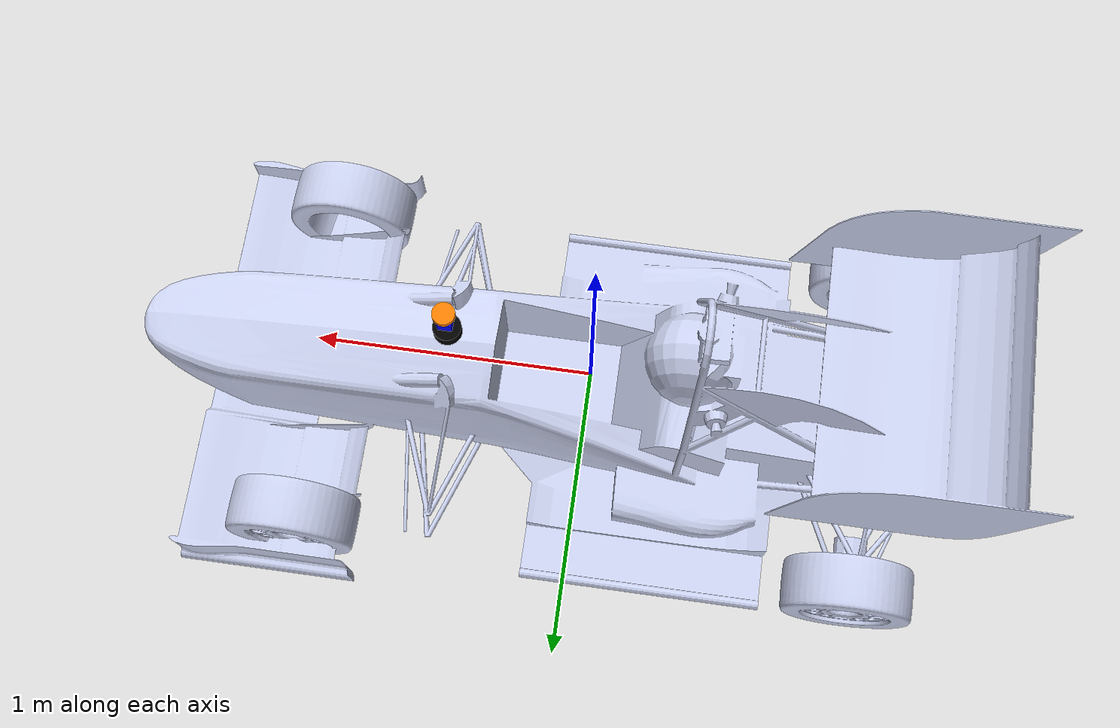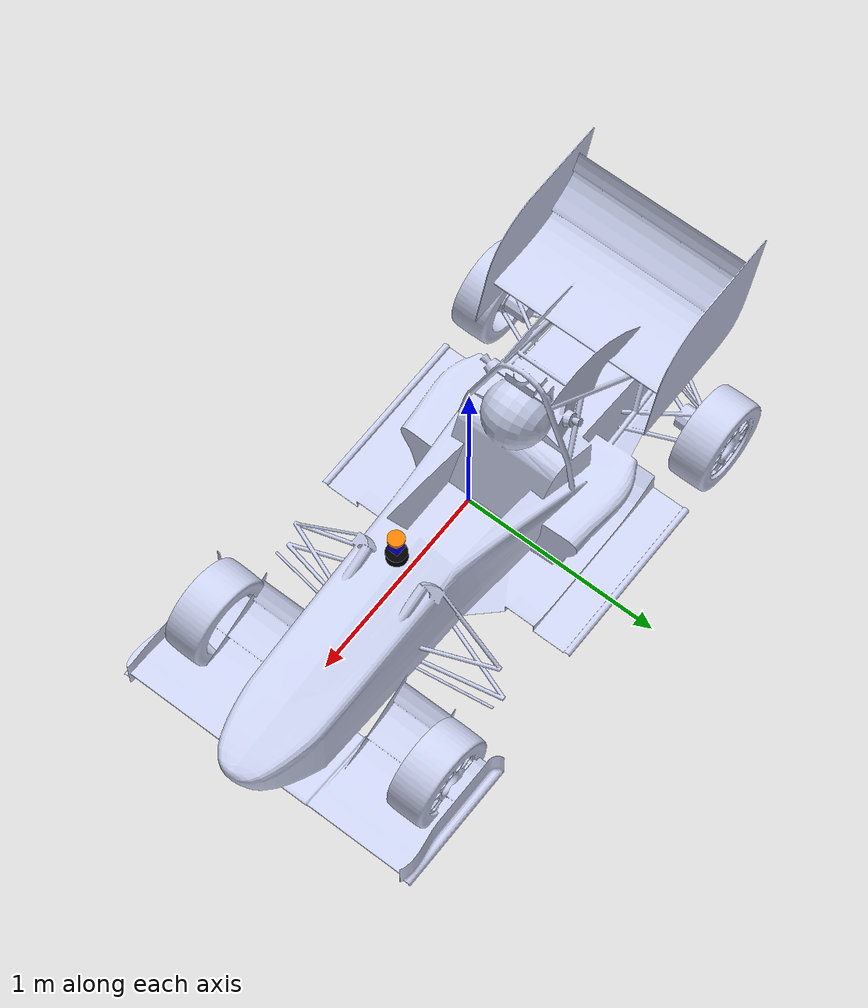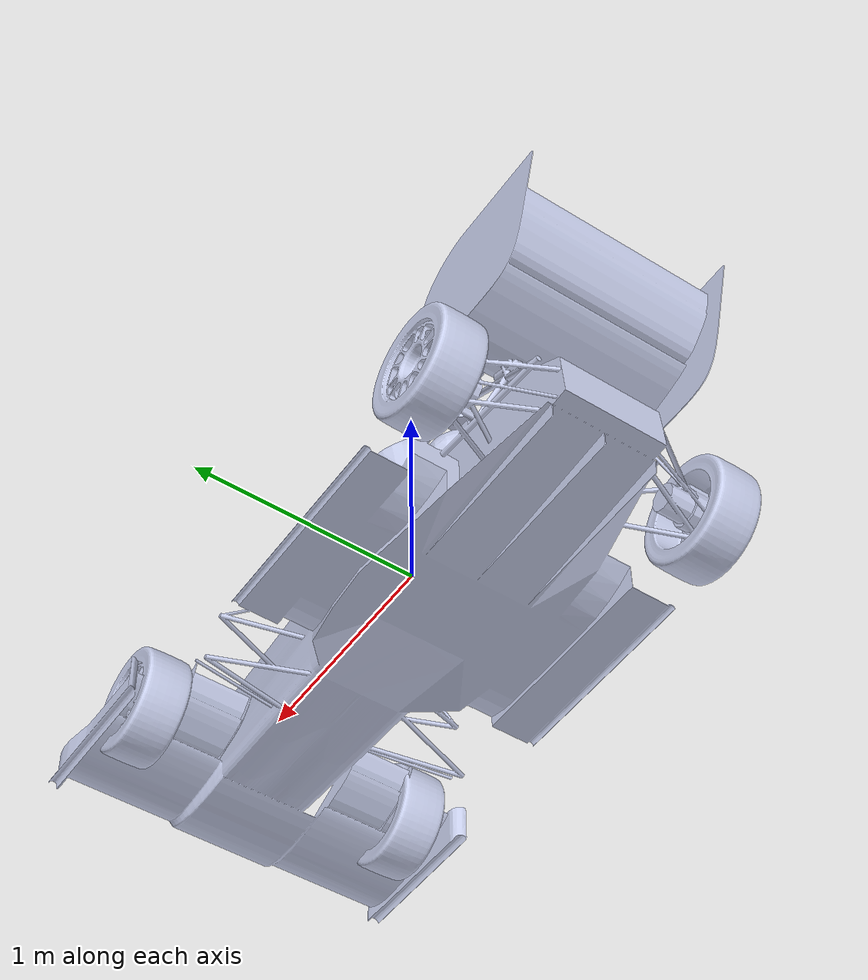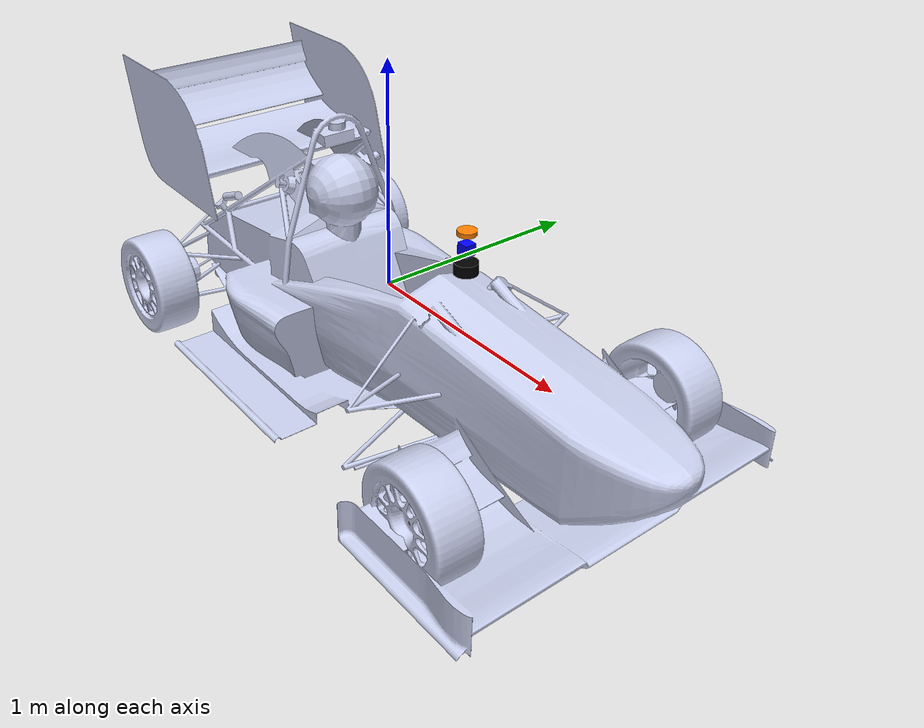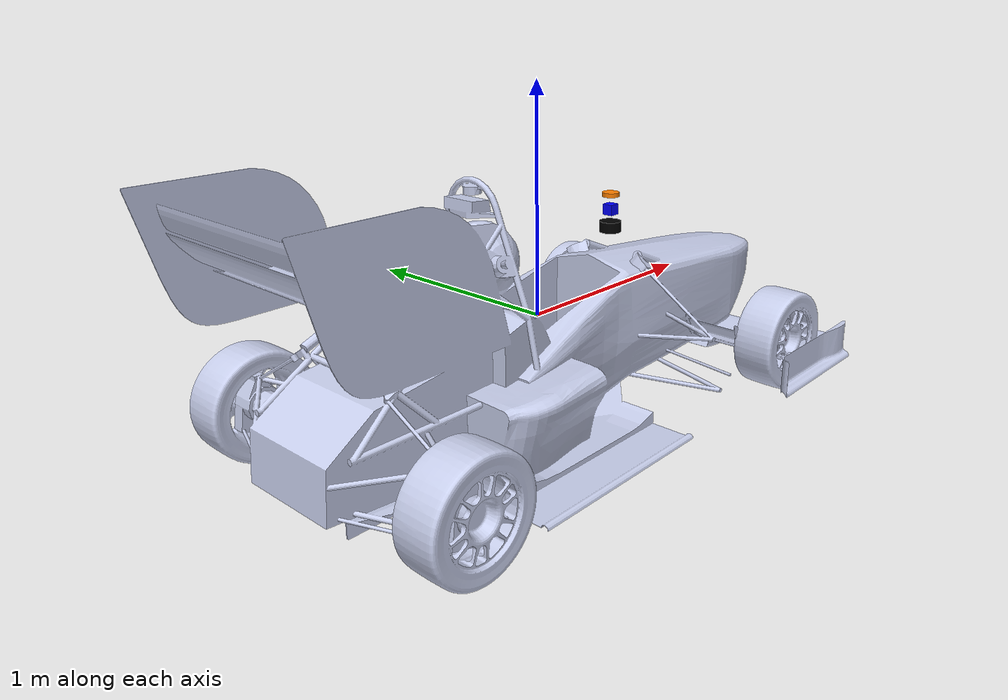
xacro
<?xml version="1.0"?>
<robot name="bgr" xmlns:xacro="http://ros.org/wiki/xacro">

  <!-- === Basic params === -->

  <!-- Wheel geometry (radius/width) and chassis dimensions -->
  <xacro:property name="wheel_radius" value="0.24"/>
  <xacro:property name="wheel_width"  value="0.12"/>

  <!-- Track = left-right distance between wheel centers; Wheelbase = front-rear distance -->
  <xacro:property name="track"        value="1.3092"/>
  <xacro:property name="wheelbase"    value="2.0368"/>

  <!-- Mass and steering limits -->
  <!-- Real measured total car mass is 283.6 kg. body_mass is the remaining
       base_link mass after separately modeled wheels, steering stubs, and sensors. -->
  <xacro:property name="total_vehicle_mass" value="283.6"/>
  <xacro:property name="wheel_mass"         value="5.0"/>
  <xacro:property name="steering_stub_mass" value="0.01"/>
  <xacro:property name="lidar_mass"         value="0.5"/>
  <xacro:property name="imu_mass"           value="0.1"/>
  <xacro:property name="front_cam_mass"     value="0.01"/>
  <xacro:property name="gps_mass"           value="0.1"/>
  <xacro:property name="body_mass"          value="${total_vehicle_mass - (4*wheel_mass + 2*steering_stub_mass + lidar_mass + imu_mass + front_cam_mass + gps_mass)}"/>
  <xacro:property name="wheel_normal_force" value="${total_vehicle_mass * 9.80665 / 4.0}"/>
  <xacro:property name="steer_limit"  value="0.6"/>

  <!-- Sensor update rates (Hz) -->
  <xacro:arg name="lidar_update_rate"     default="50"/>
  <xacro:arg name="front_cam_update_rate" default="30"/>

  <xacro:property name="lidar_update_rate"     value="$(arg lidar_update_rate)"/>
  <xacro:property name="imu_update_rate"       value="10"/>
  <xacro:property name="front_cam_update_rate" value="$(arg front_cam_update_rate)"/>
  <xacro:property name="gps_update_rate"       value="10"/>

  <!-- Mesh-bounds approximation used for base_link collision and inertia.
       Replace body_cg_* with measured CG values when available. -->
  <xacro:property name="body_size_x"             value="3.140043"/>
  <xacro:property name="body_size_y"             value="1.606011"/>
  <xacro:property name="body_size_z"             value="1.151132"/>
  <xacro:property name="body_collision_origin_x" value="0.074010"/>
  <xacro:property name="body_collision_origin_y" value="0.0"/>
  <xacro:property name="body_collision_origin_z" value="0.153035"/>
  <xacro:property name="body_cg_x"               value="${body_collision_origin_x}"/>
  <xacro:property name="body_cg_y"               value="${body_collision_origin_y}"/>
  <xacro:property name="body_cg_z"               value="${body_collision_origin_z}"/>

  <!-- External includes. Keep these after shared properties so Gazebo and
       ros2_control fragments can reuse the same physical dimensions. -->
  <xacro:include filename="$(find bgr_description)/urdf/bgr_gazebo.xacro"/>
  <xacro:include filename="$(find bgr_description)/urdf/bgr_ros2_control.xacro"/>

  <!-- === Base footprint === -->
  <link name="base_footprint"/>

  <joint name="base_joint" type="fixed">
    <parent link="base_footprint"/>
    <child link="base_link"/>
    <origin xyz="0 0 0" rpy="0 0 0"/>
  </joint>

   <!--  Base link (chassis) -->
  <link name="base_link">
    <!-- Box inertia -->
    <inertial>
      <origin xyz="${body_cg_x} ${body_cg_y} ${body_cg_z}" rpy="0 0 0"/>
      <mass value="${body_mass}"/>
      <inertia ixx="${1.0/12.0*body_mass*(body_size_y*body_size_y + body_size_z*body_size_z)}"
               iyy="${1.0/12.0*body_mass*(body_size_x*body_size_x + body_size_z*body_size_z)}"
               izz="${1.0/12.0*body_mass*(body_size_x*body_size_x + body_size_y*body_size_y)}"
               ixy="0" ixz="0" iyz="0"/>
    </inertial>

    <!-- Visual STL File (doesn't affect physics) -->
    <visual>
      <origin xyz="0 0 0" rpy="0 0 0"/>
      <geometry>
        <mesh filename="package://bgr_description/meshes/visual/base_link.STL"/>
      </geometry>
      <material name=""><color rgba="0.79216 0.81961 0.93333 1"/></material>
    </visual>

    <!-- Collision as box (affects physics) -->
    <collision>
      <origin xyz="${body_collision_origin_x} ${body_collision_origin_y} ${body_collision_origin_z}" rpy="0 0 0"/>
      <geometry>
        <box size="${body_size_x} ${body_size_y} ${body_size_z}"/>
      </geometry>
    </collision>
  </link>

  <!-- === Wheel link macro === -->
  <xacro:macro name="wheel_link" params="name visual_mesh">
    <link name="${name}">
      <inertial>
        <origin xyz="0 0 0" rpy="0 0 0"/>
        <mass value="${wheel_mass}"/>
        <inertia ixx="${(1.0/12.0)*wheel_mass*(3*wheel_radius*wheel_radius + wheel_width*wheel_width)}"
                 iyy="${0.5*wheel_mass*wheel_radius*wheel_radius}"
                 izz="${(1.0/12.0)*wheel_mass*(3*wheel_radius*wheel_radius + wheel_width*wheel_width)}"
                 ixy="0" ixz="0" iyz="0"/>
      </inertial>

      <!-- Visual mesh -->
      <visual>
        <origin xyz="0 0 0" rpy="0 0 0"/>
        <geometry>
          <mesh filename="${visual_mesh}"/>
        </geometry>
        <material name=""><color rgba="0.79216 0.81961 0.93333 1"/></material>
      </visual>

      <!-- Collision as cylinder -->
      <collision>
        <origin xyz="0 0 0" rpy="1.57079632679 0 0"/>
        <geometry>
          <cylinder radius="${wheel_radius}" length="${wheel_width}"/>
        </geometry>
      </collision>
    </link>
  </xacro:macro>

  <!-- === Stub link macro (for steering knuckles) === -->
  <xacro:macro name="stub_link" params="name">
    <link name="${name}">
      <inertial>
        <mass value="${steering_stub_mass}"/>
        <origin xyz="0 0 0" rpy="0 0 0"/>
        <inertia ixx="1e-5" ixy="0" ixz="0" iyy="1e-5" iyz="0" izz="1e-5"/>
      </inertial>
      <visual>
        <origin xyz="0 0 0" rpy="0 0 0"/>
        <geometry><cylinder radius="0.01" length="0.02"/></geometry>
      </visual>
    </link>
  </xacro:macro>

  <!-- === Wheels and Joints === -->
  <!-- rear wheels -->
  <xacro:wheel_link name="Wheel_rl" visual_mesh="package://bgr_description/meshes/visual/Wheel_rl.STL"/>
  <xacro:wheel_link name="Wheel_rr" visual_mesh="package://bgr_description/meshes/visual/Wheel_rr.STL"/>

  <!-- front wheels with steering stubs -->
  <xacro:stub_link name="Steering_fl"/>
  <xacro:wheel_link name="Wheel_fl" visual_mesh="package://bgr_description/meshes/visual/Wheel_fl.STL"/>

  <xacro:stub_link name="Steering_fr"/>
  <xacro:wheel_link name="Wheel_fr" visual_mesh="package://bgr_description/meshes/visual/Wheel_fr.STL"/>

  <!-- === Joints === -->
  <!-- rear left -->
  <joint name="Wheel_rl_joint" type="continuous">
    <origin xyz="${-wheelbase/2} ${ track/2} -${wheel_radius}" rpy="0 0 0"/>
    <parent link="base_link"/>
    <child  link="Wheel_rl"/>
    <axis xyz="0 1 0"/>
    <limit effort="200" velocity="100"/>
    <dynamics damping="0.05" friction="0.01"/>
  </joint>

  <!-- rear right -->
  <joint name="Wheel_rr_joint" type="continuous">
    <origin xyz="${-wheelbase/2} ${-track/2} -${wheel_radius}" rpy="0 0 0"/>
    <parent link="base_link"/>
    <child  link="Wheel_rr"/>
    <axis xyz="0 1 0"/>
    <limit effort="200" velocity="100"/>
    <dynamics damping="0.05" friction="0.01"/>
  </joint>

  <!-- steering front left-->
  <joint name="Steering_fl_joint" type="revolute">
    <origin xyz="${ wheelbase/2} ${ track/2} -${wheel_radius}" rpy="0 0 0"/>
    <parent link="base_link"/>
    <child  link="Steering_fl"/>
    <axis xyz="0 0 1"/>
    <limit lower="${-steer_limit}" upper="${steer_limit}" effort="200" velocity="2.0"/>
    <dynamics damping="1.5" friction="0.1"/>
  </joint>

  <!-- left front wheel -->
  <joint name="Wheel_fl_joint" type="continuous">
    <origin xyz="0 0 0" rpy="0 0 0"/>
    <parent link="Steering_fl"/>
    <child  link="Wheel_fl"/>
    <axis xyz="0 1 0"/>
    <limit effort="200" velocity="100"/>
    <dynamics damping="0.03" friction="0.01"/>
  </joint>

  <!-- steering front right-->
  <joint name="Steering_fr_joint" type="revolute">
    <origin xyz="${ wheelbase/2} ${-track/2} -${wheel_radius}" rpy="0 0 0"/>
    <parent link="base_link"/>
    <child  link="Steering_fr"/>
    <axis xyz="0 0 1"/>
    <limit lower="${-steer_limit}" upper="${steer_limit}" effort="200" velocity="2.0"/>
    <dynamics damping="1.5" friction="0.1"/>
  </joint>

  <!-- right front wheel -->
  <joint name="Wheel_fr_joint" type="continuous">
    <origin xyz="0 0 0" rpy="0 0 0"/>
    <parent link="Steering_fr"/>
    <child  link="Wheel_fr"/>
    <axis xyz="0 1 0"/>
    <limit effort="200" velocity="100"/>
    <dynamics damping="0.03" friction="0.01"/>
  </joint>

  <!-- Lidar -->
  <joint name="lidar_joint" type="fixed">
    <origin xyz="0.5 0 0.3" rpy="0 0 0"/>
    <parent link="base_link"/>
    <child link="lidar_link"/>
  </joint>

  <link name="lidar_link">
    <inertial>
      <mass value="${lidar_mass}"/>
      <origin xyz="0 0 0" rpy="0 0 0"/>
      <inertia ixx="0.001" ixy="0" ixz="0" iyy="0.001" iyz="0" izz="0.001"/>
    </inertial>
    <visual>
      <geometry>
        <cylinder radius="0.05" length="0.05"/>
      </geometry>
      <material name="black">
        <color rgba="0 0 0 1"/>
      </material>
    </visual>
  </link>

  <!-- IMU -->
  <joint name="imu_joint" type="fixed">
    <origin xyz="0 0 0" rpy="0 0 0"/>
    <parent link="base_link"/>
    <child link="imu_link"/>
  </joint>

  <link name="imu_link">
    <inertial>
      <mass value="${imu_mass}"/>
      <origin xyz="0 0 0" rpy="0 0 0"/>
      <inertia ixx="0.00001" ixy="0" ixz="0" iyy="0.00001" iyz="0" izz="0.00001"/>
    </inertial>
  </link>

  <!-- GPS -->
  <joint name="gps_joint" type="fixed">
    <origin xyz="0.5 0 0.45" rpy="0 0 0"/>
    <parent link="base_link"/>
    <child link="gps_link"/>
  </joint>

  <link name="gps_link">
    <inertial>
      <mass value="${gps_mass}"/>
      <origin xyz="0 0 0" rpy="0 0 0"/>
      <inertia ixx="0.00001" ixy="0" ixz="0" iyy="0.00001" iyz="0" izz="0.00001"/>
    </inertial>
    <visual>
      <geometry>
        <cylinder radius="0.04" length="0.02"/>
      </geometry>
      <material name="orange">
        <color rgba="1.0 0.5 0.0 1.0"/>
      </material>
    </visual>
  </link>

  <!-- Front Camera - To run: ros2 run rqt_image_view rqt_image_view after launching gazebo -->
  <link name="front_cam_link">
    <inertial>
      <origin xyz="0 0 0" rpy="0 0 0"/>
      <mass value="${front_cam_mass}"/>
      <inertia ixx="0.001" ixy="0" ixz="0" iyy="0.001" iyz="0" izz="0.001"/>
    </inertial>
    <visual>
      <geometry>
        <box size="0.05 0.05 0.05"/>
      </geometry>
      <material name="blue">
        <color rgba="0 0 1 1"/>
      </material>
    </visual>
  </link>

  <joint name="front_cam_joint" type="fixed">
    <parent link="base_link"/>
    <child link="front_cam_link"/>
    <origin xyz="0.5 0 0.38" rpy="0 0 0"/>
  </joint>
</robot>
